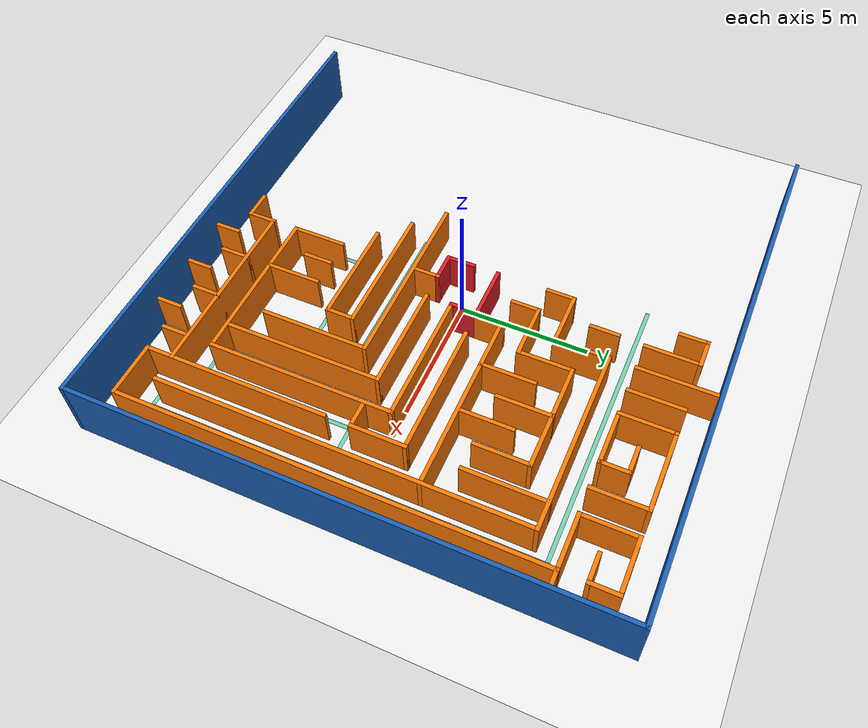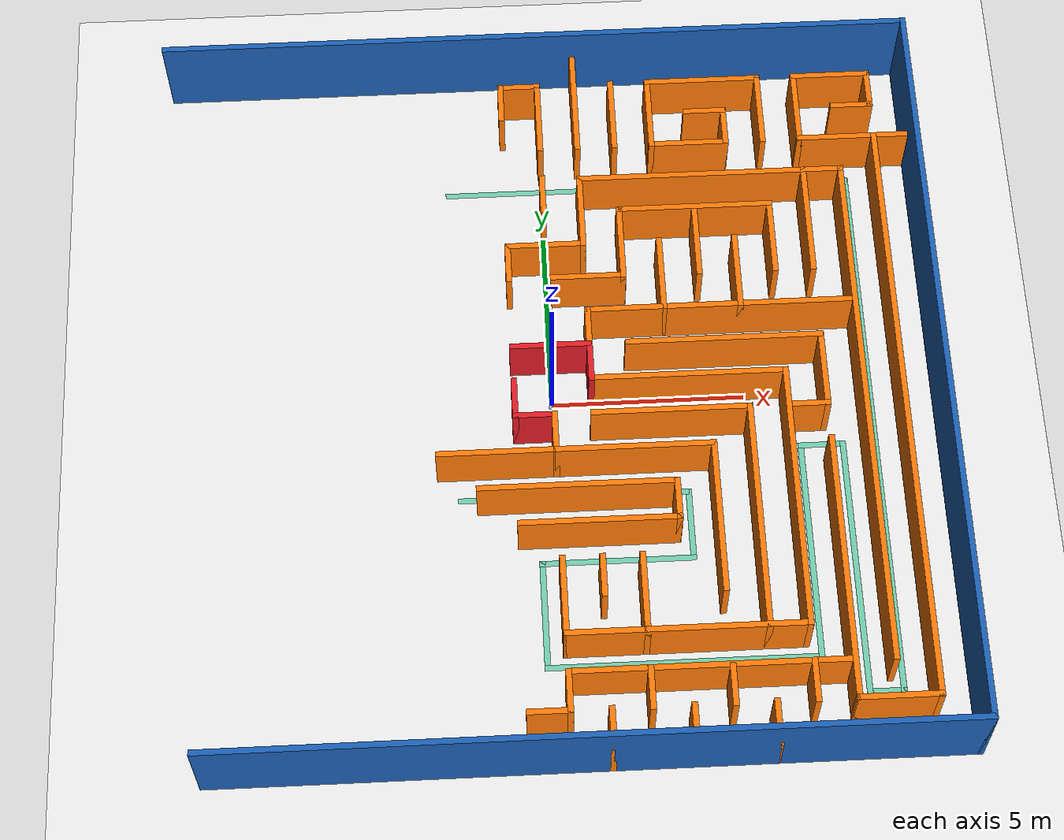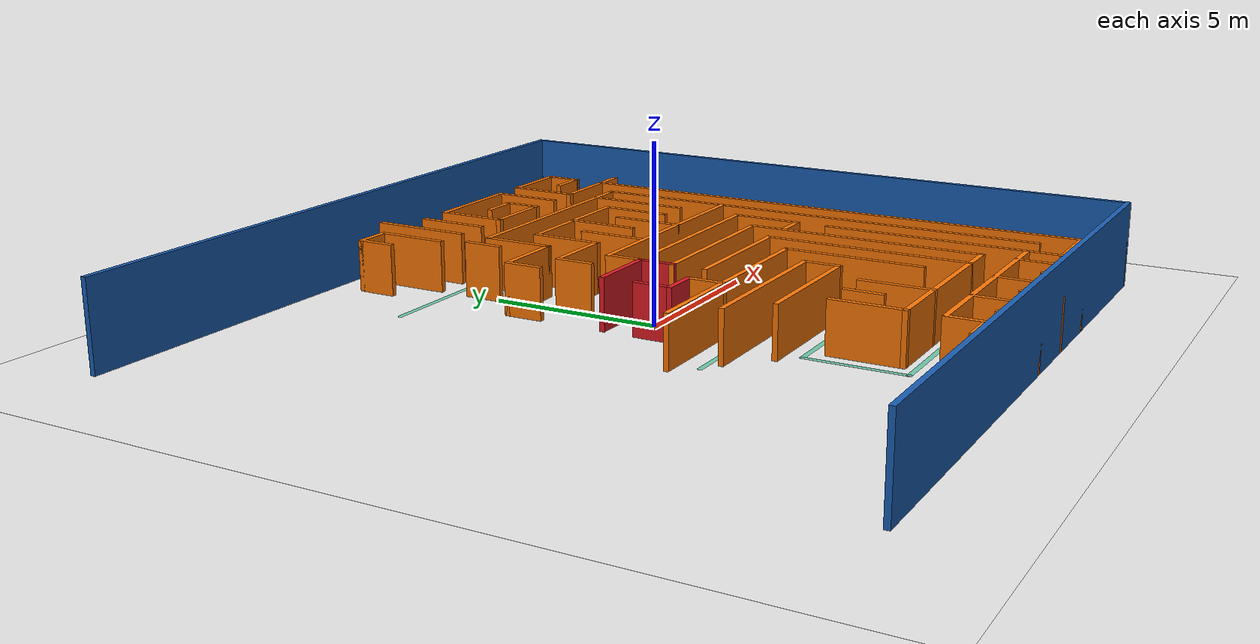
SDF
<sdf version="1.7">
 <world name="default">
  <model name="ground_plane">
   <static>1</static>
   <link name="link">
    <collision name="collision">
     <geometry><plane><normal>0 0 1</normal><size>100 100</size></plane></geometry>
     <surface><friction><ode><mu>100</mu><mu2>50</mu2></ode></friction></surface>
    </collision>
    <visual name="visual">
     <cast_shadows>0</cast_shadows>
     <geometry><plane><normal>0 0 1</normal><size>100 100</size></plane></geometry>
     <material>
      <script><uri>file://media/materials/scripts/gazebo.material</uri><name>Gazebo/White</name></script>
     </material>
    </visual>
   </link>
  </model>
  <model name="big_maze">
   <link name="Wall_100">
    <collision name="Wall_100_Collision">
     <geometry><box><size>1.15 0.15 1.6</size></box></geometry>
     <pose>0 0 0.8 0 -0 0</pose>
    </collision>
    <visual name="Wall_100_Visual">
     <pose>0 0 0.8 0 -0 0</pose>
     <geometry><box><size>1.15 0.15 1.6</size></box></geometry>
     <material>
      <script><uri>file://media/materials/scripts/gazebo.material</uri><name>Gazebo/Grey</name></script>
      <ambient>0.996078 0.47451 0.0196078 1</ambient>
     </material>
     <meta><layer>0</layer></meta>
    </visual>
    <pose>0 5.5 0 0 -0 1.5708</pose>
   </link>
   <link name="Wall_102">
    <collision name="Wall_102_Collision">
     <geometry><box><size>2.15 0.15 1.5</size></box></geometry>
     <pose>0 0 0.75 0 -0 0</pose>
    </collision>
    <visual name="Wall_102_Visual">
     <pose>0 0 0.75 0 -0 0</pose>
     <geometry><box><size>2.15 0.15 1.5</size></box></geometry>
     <material>
      <script><uri>file://media/materials/scripts/gazebo.material</uri><name>Gazebo/Grey</name></script>
      <ambient>0.996078 0.47451 0.0196078 1</ambient>
     </material>
     <meta><layer>0</layer></meta>
    </visual>
    <pose>0 8 0 0 -0 1.5708</pose>
   </link>
   <link name="Wall_104">
    <collision name="Wall_104_Collision">
     <geometry><box><size>1.15 0.15 1.5</size></box></geometry>
     <pose>0 0 0.75 0 -0 0</pose>
    </collision>
    <visual name="Wall_104_Visual">
     <pose>0 0 0.75 0 -0 0</pose>
     <geometry><box><size>1.15 0.15 1.5</size></box></geometry>
     <material>
      <script><uri>file://media/materials/scripts/gazebo.material</uri><name>Gazebo/Grey</name></script>
      <ambient>0.996078 0.47451 0.0196078 1</ambient>
     </material>
     <meta><layer>0</layer></meta>
    </visual>
    <pose>1 -9.5 0 0 -0 1.5708</pose>
   </link>
   <link name="Wall_106">
    <collision name="Wall_106_Collision">
     <geometry><box><size>3.15 0.15 1.5</size></box></geometry>
     <pose>0 0 0.75 0 -0 0</pose>
    </collision>
    <visual name="Wall_106_Visual">
     <pose>0 0 0.75 0 -0 0</pose>
     <geometry><box><size>3.15 0.15 1.5</size></box></geometry>
     <material>
      <script><uri>file://media/materials/scripts/gazebo.material</uri><name>Gazebo/Grey</name></script>
      <ambient>0.996078 0.47451 0.0196078 1</ambient>
     </material>
     <meta><layer>0</layer></meta>
    </visual>
    <pose>1 8.5 0 0 -0 1.5708</pose>
   </link>
   <link name="Wall_108">
    <collision name="Wall_108_Collision">
     <geometry><box><size>2.15 0.15 1.5</size></box></geometry>
     <pose>0 0 0.75 0 -0 0</pose>
    </collision>
    <visual name="Wall_108_Visual">
     <pose>0 0 0.75 0 -0 0</pose>
     <geometry><box><size>2.15 0.15 1.5</size></box></geometry>
     <material>
      <script><uri>file://media/materials/scripts/gazebo.material</uri><name>Gazebo/Grey</name></script>
      <ambient>0.996078 0.47451 0.0196078 1</ambient>
     </material>
     <meta><layer>0</layer></meta>
    </visual>
    <pose>1 5 0 0 -0 1.5708</pose>
   </link>
   <link name="Wall_110">
    <collision name="Wall_110_Collision">
     <geometry><box><size>1.15 0.15 1.5</size></box></geometry>
     <pose>0 0 0.75 0 -0 0</pose>
    </collision>
    <visual name="Wall_110_Visual">
     <pose>0 0 0.75 0 -0 0</pose>
     <geometry><box><size>1.15 0.15 1.5</size></box></geometry>
     <material>
      <script><uri>file://media/materials/scripts/gazebo.material</uri><name>Gazebo/Grey</name></script>
      <ambient>0.878431 0.105882 0.141176 1</ambient>
     </material>
     <meta><layer>0</layer></meta>
    </visual>
    <pose>1 0.5 0 0 -0 1.5708</pose>
   </link>
   <link name="Wall_112">
    <collision name="Wall_112_Collision">
     <geometry><box><size>1.15 0.15 1.5</size></box></geometry>
     <pose>0 0 0.75 0 -0 0</pose>
    </collision>
    <visual name="Wall_112_Visual">
     <pose>0 0 0.75 0 -0 0</pose>
     <geometry><box><size>1.15 0.15 1.5</size></box></geometry>
     <material>
      <script><uri>file://media/materials/scripts/gazebo.material</uri><name>Gazebo/Grey</name></script>
      <ambient>0.996078 0.47451 0.0196078 1</ambient>
     </material>
     <meta><layer>0</layer></meta>
    </visual>
    <pose>1 -5.5 0 0 -0 1.5708</pose>
   </link>
   <link name="Wall_114">
    <collision name="Wall_114_Collision">
     <geometry><box><size>1.15 0.15 1.5</size></box></geometry>
     <pose>0 0 0.75 0 -0 0</pose>
    </collision>
    <visual name="Wall_114_Visual">
     <pose>0 0 0.75 0 -0 0</pose>
     <geometry><box><size>1.15 0.15 1.5</size></box></geometry>
     <material>
      <script><uri>file://media/materials/scripts/gazebo.material</uri><name>Gazebo/Grey</name></script>
      <ambient>0.996078 0.47451 0.0196078 1</ambient>
     </material>
     <meta><layer>0</layer></meta>
    </visual>
    <pose>2 -8.5 0 0 -0 1.5708</pose>
   </link>
   <link name="Wall_116">
    <collision name="Wall_116_Collision">
     <geometry><box><size>2.15 0.15 1.5</size></box></geometry>
     <pose>0 0 0.75 0 -0 0</pose>
    </collision>
    <visual name="Wall_116_Visual">
     <pose>0 0 0.75 0 -0 0</pose>
     <geometry><box><size>2.15 0.15 1.5</size></box></geometry>
     <material>
      <script><uri>file://media/materials/scripts/gazebo.material</uri><name>Gazebo/Grey</name></script>
      <ambient>0.996078 0.47451 0.0196078 1</ambient>
     </material>
     <meta><layer>0</layer></meta>
    </visual>
    <pose>2 -6 0 0 -0 1.5708</pose>
   </link>
   <link name="Wall_118">
    <collision name="Wall_118_Collision">
     <geometry><box><size>2.15 0.15 1.5</size></box></geometry>
     <pose>0 0 0.75 0 -0 0</pose>
    </collision>
    <visual name="Wall_118_Visual">
     <pose>0 0 0.75 0 -0 0</pose>
     <geometry><box><size>2.15 0.15 1.5</size></box></geometry>
     <material>
      <script><uri>file://media/materials/scripts/gazebo.material</uri><name>Gazebo/Grey</name></script>
      <ambient>0.996078 0.47451 0.0196078 1</ambient>
     </material>
     <meta><layer>0</layer></meta>
    </visual>
    <pose>2 8 0 0 -0 1.5708</pose>
   </link>
   <link name="Wall_12">
    <collision name="Wall_12_Collision">
     <geometry><box><size>20.15 0.15 2.5</size></box></geometry>
     <pose>0 0 1.25 0 -0 0</pose>
    </collision>
    <visual name="Wall_12_Visual">
     <pose>0 0 1.25 0 -0 0</pose>
     <geometry><box><size>20.15 0.15 2.5</size></box></geometry>
     <material>
      <script><uri>file://media/materials/scripts/gazebo.material</uri><name>Gazebo/Grey</name></script>
      <ambient>0.101961 0.372549 0.705882 1</ambient>
     </material>
     <meta><layer>0</layer></meta>
    </visual>
    <pose>0 10 0 0 -0 0</pose>
   </link>
   <link name="Wall_120">
    <collision name="Wall_120_Collision">
     <geometry><box><size>2.15 0.15 1.5</size></box></geometry>
     <pose>0 0 0.75 0 -0 0</pose>
    </collision>
    <visual name="Wall_120_Visual">
     <pose>0 0 0.75 0 -0 0</pose>
     <geometry><box><size>2.15 0.15 1.5</size></box></geometry>
     <material>
      <script><uri>file://media/materials/scripts/gazebo.material</uri><name>Gazebo/Grey</name></script>
      <ambient>0.996078 0.47451 0.0196078 1</ambient>
     </material>
     <meta><layer>0</layer></meta>
    </visual>
    <pose>2 4 0 0 -0 1.5708</pose>
   </link>
   <link name="Wall_122">
    <collision name="Wall_122_Collision">
     <geometry><box><size>1.15 0.15 1.5</size></box></geometry>
     <pose>0 0 0.75 0 -0 0</pose>
    </collision>
    <visual name="Wall_122_Visual">
     <pose>0 0 0.75 0 -0 0</pose>
     <geometry><box><size>1.15 0.15 1.5</size></box></geometry>
     <material>
      <script><uri>file://media/materials/scripts/gazebo.material</uri><name>Gazebo/Grey</name></script>
      <ambient>0.996078 0.47451 0.0196078 1</ambient>
     </material>
     <meta><layer>0</layer></meta>
    </visual>
    <pose>3 -9.5 0 0 -0 1.5708</pose>
   </link>
   <link name="Wall_124">
    <collision name="Wall_124_Collision">
     <geometry><box><size>2.15 0.15 1.5</size></box></geometry>
     <pose>0 0 0.75 0 -0 0</pose>
    </collision>
    <visual name="Wall_124_Visual">
     <pose>0 0 0.75 0 -0 0</pose>
     <geometry><box><size>2.15 0.15 1.5</size></box></geometry>
     <material>
      <script><uri>file://media/materials/scripts/gazebo.material</uri><name>Gazebo/Grey</name></script>
      <ambient>0.996078 0.47451 0.0196078 1</ambient>
     </material>
     <meta><layer>0</layer></meta>
    </visual>
    <pose>3 8 0 0 -0 1.5708</pose>
   </link>
   <link name="Wall_126">
    <collision name="Wall_126_Collision">
     <geometry><box><size>2.15 0.15 1.5</size></box></geometry>
     <pose>0 0 0.75 0 -0 0</pose>
    </collision>
    <visual name="Wall_126_Visual">
     <pose>0 0 0.75 0 -0 0</pose>
     <geometry><box><size>2.15 0.15 1.5</size></box></geometry>
     <material>
      <script><uri>file://media/materials/scripts/gazebo.material</uri><name>Gazebo/Grey</name></script>
      <ambient>0.996078 0.47451 0.0196078 1</ambient>
     </material>
     <meta><layer>0</layer></meta>
    </visual>
    <pose>3 3 0 0 -0 1.5708</pose>
   </link>
   <link name="Wall_128">
    <collision name="Wall_128_Collision">
     <geometry><box><size>1.15 0.15 1.5</size></box></geometry>
     <pose>0 0 0.75 0 -0 0</pose>
    </collision>
    <visual name="Wall_128_Visual">
     <pose>0 0 0.75 0 -0 0</pose>
     <geometry><box><size>1.15 0.15 1.5</size></box></geometry>
     <material>
      <script><uri>file://media/materials/scripts/gazebo.material</uri><name>Gazebo/Grey</name></script>
      <ambient>0.996078 0.47451 0.0196078 1</ambient>
     </material>
     <meta><layer>0</layer></meta>
    </visual>
    <pose>3 -3.5 0 0 -0 1.5708</pose>
   </link>
   <link name="Wall_130">
    <collision name="Wall_130_Collision">
     <geometry><box><size>2.15 0.15 1.5</size></box></geometry>
     <pose>0 0 0.75 0 -0 0</pose>
    </collision>
    <visual name="Wall_130_Visual">
     <pose>0 0 0.75 0 -0 0</pose>
     <geometry><box><size>2.15 0.15 1.5</size></box></geometry>
     <material>
      <script><uri>file://media/materials/scripts/gazebo.material</uri><name>Gazebo/Grey</name></script>
      <ambient>0.996078 0.47451 0.0196078 1</ambient>
     </material>
     <meta><layer>0</layer></meta>
    </visual>
    <pose>4 4 0 0 -0 1.5708</pose>
   </link>
   <link name="Wall_132">
    <collision name="Wall_132_Collision">
     <geometry><box><size>1.15 0.15 1.5</size></box></geometry>
     <pose>0 0 0.75 0 -0 0</pose>
    </collision>
    <visual name="Wall_132_Visual">
     <pose>0 0 0.75 0 -0 0</pose>
     <geometry><box><size>1.15 0.15 1.5</size></box></geometry>
     <material>
      <script><uri>file://media/materials/scripts/gazebo.material</uri><name>Gazebo/Grey</name></script>
      <ambient>0.996078 0.47451 0.0196078 1</ambient>
     </material>
     <meta><layer>0</layer></meta>
    </visual>
    <pose>4 -8.5 0 0 -0 1.5708</pose>
   </link>
   <link name="Wall_134">
    <collision name="Wall_134_Collision">
     <geometry><box><size>4.15 0.15 1.5</size></box></geometry>
     <pose>0 0 0.75 0 -0 0</pose>
    </collision>
    <visual name="Wall_134_Visual">
     <pose>0 0 0.75 0 -0 0</pose>
     <geometry><box><size>4.15 0.15 1.5</size></box></geometry>
     <material>
      <script><uri>file://media/materials/scripts/gazebo.material</uri><name>Gazebo/Grey</name></script>
      <ambient>0.996078 0.47451 0.0196078 1</ambient>
     </material>
     <meta><layer>0</layer></meta>
    </visual>
    <pose>4 -4 0 0 -0 1.5708</pose>
   </link>
   <link name="Wall_136">
    <collision name="Wall_136_Collision">
     <geometry><box><size>1.15 0.15 1.5</size></box></geometry>
     <pose>0 0 0.75 0 -0 0</pose>
    </collision>
    <visual name="Wall_136_Visual">
     <pose>0 0 0.75 0 -0 0</pose>
     <geometry><box><size>1.15 0.15 1.5</size></box></geometry>
     <material>
      <script><uri>file://media/materials/scripts/gazebo.material</uri><name>Gazebo/Grey</name></script>
      <ambient>0.996078 0.47451 0.0196078 1</ambient>
     </material>
     <meta><layer>0</layer></meta>
    </visual>
    <pose>5 7.5 0 0 -0 -1.5708</pose>
   </link>
   <link name="Wall_138">
    <collision name="Wall_138_Collision">
     <geometry><box><size>2.15 0.15 1.5</size></box></geometry>
     <pose>0 0 0.75 0 -0 0</pose>
    </collision>
    <visual name="Wall_138_Visual">
     <pose>0 0 0.75 0 -0 0</pose>
     <geometry><box><size>2.15 0.15 1.5</size></box></geometry>
     <material>
      <script><uri>file://media/materials/scripts/gazebo.material</uri><name>Gazebo/Grey</name></script>
      <ambient>0.996078 0.47451 0.0196078 1</ambient>
     </material>
     <meta><layer>0</layer></meta>
    </visual>
    <pose>5 3 0 0 -0 1.5708</pose>
   </link>
   <link name="Wall_14">
    <collision name="Wall_14_Collision">
     <geometry><box><size>20.15 0.15 2.5</size></box></geometry>
     <pose>0 0 1.25 0 -0 0</pose>
    </collision>
    <visual name="Wall_14_Visual">
     <pose>0 0 1.25 0 -0 0</pose>
     <geometry><box><size>20.15 0.15 2.5</size></box></geometry>
     <material>
      <script><uri>file://media/materials/scripts/gazebo.material</uri><name>Gazebo/Grey</name></script>
      <ambient>0.101961 0.372549 0.705882 1</ambient>
     </material>
     <meta><layer>0</layer></meta>
    </visual>
    <pose>10 0 0 0 -0 -1.5708</pose>
   </link>
   <link name="Wall_140">
    <collision name="Wall_140_Collision">
     <geometry><box><size>6.15 0.15 1.5</size></box></geometry>
     <pose>0 0 0.75 0 -0 0</pose>
    </collision>
    <visual name="Wall_140_Visual">
     <pose>0 0 0.75 0 -0 0</pose>
     <geometry><box><size>6.15 0.15 1.5</size></box></geometry>
     <material>
      <script><uri>file://media/materials/scripts/gazebo.material</uri><name>Gazebo/Grey</name></script>
      <ambient>0.996078 0.47451 0.0196078 1</ambient>
     </material>
     <meta><layer>0</layer></meta>
    </visual>
    <pose>5 -4 0 0 -0 1.5708</pose>
   </link>
   <link name="Wall_142">
    <collision name="Wall_142_Collision">
     <geometry><box><size>1.15 0.15 1.5</size></box></geometry>
     <pose>0 0 0.75 0 -0 0</pose>
    </collision>
    <visual name="Wall_142_Visual">
     <pose>0 0 0.75 0 -0 0</pose>
     <geometry><box><size>1.15 0.15 1.5</size></box></geometry>
     <material>
      <script><uri>file://media/materials/scripts/gazebo.material</uri><name>Gazebo/Grey</name></script>
      <ambient>0.996078 0.47451 0.0196078 1</ambient>
     </material>
     <meta><layer>0</layer></meta>
    </visual>
    <pose>5 -9.5 0 0 -0 1.5708</pose>
   </link>
   <link name="Wall_144">
    <collision name="Wall_144_Collision">
     <geometry><box><size>2.15 0.15 1.5</size></box></geometry>
     <pose>0 0 0.75 0 -0 0</pose>
    </collision>
    <visual name="Wall_144_Visual">
     <pose>0 0 0.75 0 -0 0</pose>
     <geometry><box><size>2.15 0.15 1.5</size></box></geometry>
     <material>
      <script><uri>file://media/materials/scripts/gazebo.material</uri><name>Gazebo/Grey</name></script>
      <ambient>0.996078 0.47451 0.0196078 1</ambient>
     </material>
     <meta><layer>0</layer></meta>
    </visual>
    <pose>6 8 0 0 -0 1.5708</pose>
   </link>
   <link name="Wall_146">
    <collision name="Wall_146_Collision">
     <geometry><box><size>1.15 0.15 1.5</size></box></geometry>
     <pose>0 0 0.75 0 -0 0</pose>
    </collision>
    <visual name="Wall_146_Visual">
     <pose>0 0 0.75 0 -0 0</pose>
     <geometry><box><size>1.15 0.15 1.5</size></box></geometry>
     <material>
      <script><uri>file://media/materials/scripts/gazebo.material</uri><name>Gazebo/Grey</name></script>
      <ambient>0.996078 0.47451 0.0196078 1</ambient>
     </material>
     <meta><layer>0</layer></meta>
    </visual>
    <pose>6 -8.5 0 0 -0 1.5708</pose>
   </link>
   <link name="Wall_148">
    <collision name="Wall_148_Collision">
     <geometry><box><size>2.15 0.15 1.5</size></box></geometry>
     <pose>0 0 0.75 0 -0 0</pose>
    </collision>
    <visual name="Wall_148_Visual">
     <pose>0 0 0.75 0 -0 0</pose>
     <geometry><box><size>2.15 0.15 1.5</size></box></geometry>
     <material>
      <script><uri>file://media/materials/scripts/gazebo.material</uri><name>Gazebo/Grey</name></script>
      <ambient>0.996078 0.47451 0.0196078 1</ambient>
     </material>
     <meta><layer>0</layer></meta>
    </visual>
    <pose>6 4 0 0 -0 1.5708</pose>
   </link>
   <link name="Wall_150">
    <collision name="Wall_150_Collision">
     <geometry><box><size>7.15 0.15 1.5</size></box></geometry>
     <pose>0 0 0.75 0 -0 0</pose>
    </collision>
    <visual name="Wall_150_Visual">
     <pose>0 0 0.75 0 -0 0</pose>
     <geometry><box><size>7.15 0.15 1.5</size></box></geometry>
     <material>
      <script><uri>file://media/materials/scripts/gazebo.material</uri><name>Gazebo/Grey</name></script>
      <ambient>0.996078 0.47451 0.0196078 1</ambient>
     </material>
     <meta><layer>0</layer></meta>
    </visual>
    <pose>6 -3.5 0 0 -0 1.5708</pose>
   </link>
   <link name="Wall_152">
    <collision name="Wall_152_Collision">
     <geometry><box><size>7.15 0.15 1.5</size></box></geometry>
     <pose>0 0 0.75 0 -0 0</pose>
    </collision>
    <visual name="Wall_152_Visual">
     <pose>0 0 0.75 0 -0 0</pose>
     <geometry><box><size>7.15 0.15 1.5</size></box></geometry>
     <material>
      <script><uri>file://media/materials/scripts/gazebo.material</uri><name>Gazebo/Grey</name></script>
      <ambient>0.996078 0.47451 0.0196078 1</ambient>
     </material>
     <meta><layer>0</layer></meta>
    </visual>
    <pose>7 -5.5 0 0 -0 1.5708</pose>
   </link>
   <link name="Wall_154">
    <collision name="Wall_154_Collision">
     <geometry><box><size>2.15 0.15 1.5</size></box></geometry>
     <pose>0 0 0.75 0 -0 0</pose>
    </collision>
    <visual name="Wall_154_Visual">
     <pose>0 0 0.75 0 -0 0</pose>
     <geometry><box><size>2.15 0.15 1.5</size></box></geometry>
     <material>
      <script><uri>file://media/materials/scripts/gazebo.material</uri><name>Gazebo/Grey</name></script>
      <ambient>0.996078 0.47451 0.0196078 1</ambient>
     </material>
     <meta><layer>0</layer></meta>
    </visual>
    <pose>7 8 0 0 -0 1.5708</pose>
   </link>
   <link name="Wall_156">
    <collision name="Wall_156_Collision">
     <geometry><box><size>3.15 0.15 1.5</size></box></geometry>
     <pose>0 0 0.75 0 -0 0</pose>
    </collision>
    <visual name="Wall_156_Visual">
     <pose>0 0 0.75 0 -0 0</pose>
     <geometry><box><size>3.15 0.15 1.5</size></box></geometry>
     <material>
      <script><uri>file://media/materials/scripts/gazebo.material</uri><name>Gazebo/Grey</name></script>
      <ambient>0.996078 0.47451 0.0196078 1</ambient>
     </material>
     <meta><layer>0</layer></meta>
    </visual>
    <pose>7 4.5 0 0 -0 1.5708</pose>
   </link>
   <link name="Wall_158">
    <collision name="Wall_158_Collision">
     <geometry><box><size>2.15 0.15 1.5</size></box></geometry>
     <pose>0 0 0.75 0 -0 0</pose>
    </collision>
    <visual name="Wall_158_Visual">
     <pose>0 0 0.75 0 -0 0</pose>
     <geometry><box><size>2.15 0.15 1.5</size></box></geometry>
     <material>
      <script><uri>file://media/materials/scripts/gazebo.material</uri><name>Gazebo/Grey</name></script>
      <ambient>0.996078 0.47451 0.0196078 1</ambient>
     </material>
     <meta><layer>0</layer></meta>
    </visual>
    <pose>7 0 0 0 -0 1.5708</pose>
   </link>
   <link name="Wall_160">
    <collision name="Wall_160_Collision">
     <geometry><box><size>14.15 0.15 1.5</size></box></geometry>
     <pose>0 0 0.75 0 -0 0</pose>
    </collision>
    <visual name="Wall_160_Visual">
     <pose>0 0 0.75 0 -0 0</pose>
     <geometry><box><size>14.15 0.15 1.5</size></box></geometry>
     <material>
      <script><uri>file://media/materials/scripts/gazebo.material</uri><name>Gazebo/Grey</name></script>
      <ambient>0.996078 0.47451 0.0196078 1</ambient>
     </material>
     <meta><layer>0</layer></meta>
    </visual>
    <pose>8 -1 0 0 -0 1.5708</pose>
   </link>
   <link name="Wall_162">
    <collision name="Wall_162_Collision">
     <geometry><box><size>16.15 0.15 1.5</size></box></geometry>
     <pose>0 0 0.75 0 -0 0</pose>
    </collision>
    <visual name="Wall_162_Visual">
     <pose>0 0 0.75 0 -0 0</pose>
     <geometry><box><size>16.15 0.15 1.5</size></box></geometry>
     <material>
      <script><uri>file://media/materials/scripts/gazebo.material</uri><name>Gazebo/Grey</name></script>
      <ambient>0.996078 0.47451 0.0196078 1</ambient>
     </material>
     <meta><layer>0</layer></meta>
    </visual>
    <pose>9 -1 0 0 -0 1.5708</pose>
   </link>
   <link name="Wall_164">
    <collision name="Wall_164_Collision">
     <geometry><box><size>1.15 0.15 1.5</size></box></geometry>
     <pose>0 0 0.75 0 -0 0</pose>
    </collision>
    <visual name="Wall_164_Visual">
     <pose>0 0 0.75 0 -0 0</pose>
     <geometry><box><size>1.15 0.15 1.5</size></box></geometry>
     <material>
      <script><uri>file://media/materials/scripts/gazebo.material</uri><name>Gazebo/Grey</name></script>
      <ambient>0.996078 0.47451 0.0196078 1</ambient>
     </material>
     <meta><layer>0</layer></meta>
    </visual>
    <pose>9 8.5 0 0 -0 -1.5708</pose>
   </link>
   <link name="Wall_170">
    <collision name="Wall_170_Collision">
     <geometry><box><size>2.15 0.15 1.5</size></box></geometry>
     <pose>0 0 0.75 0 -0 0</pose>
    </collision>
    <visual name="Wall_170_Visual">
     <pose>0 0 0.75 0 -0 0</pose>
     <geometry><box><size>2.15 0.15 1.5</size></box></geometry>
     <material>
      <script><uri>file://media/materials/scripts/gazebo.material</uri><name>Gazebo/Grey</name></script>
      <ambient>0.996078 0.47451 0.0196078 1</ambient>
     </material>
     <meta><layer>0</layer></meta>
    </visual>
    <pose>8 9 0 0 -0 3.14159</pose>
   </link>
   <link name="Wall_172">
    <collision name="Wall_172_Collision">
     <geometry><box><size>3.15 0.15 1.5</size></box></geometry>
     <pose>0 0 0.75 0 -0 0</pose>
    </collision>
    <visual name="Wall_172_Visual">
     <pose>0 0 0.75 0 -0 0</pose>
     <geometry><box><size>3.15 0.15 1.5</size></box></geometry>
     <material>
      <script><uri>file://media/materials/scripts/gazebo.material</uri><name>Gazebo/Grey</name></script>
      <ambient>0.996078 0.47451 0.0196078 1</ambient>
     </material>
     <meta><layer>0</layer></meta>
    </visual>
    <pose>4.5 9 0 0 -0 0</pose>
   </link>
   <link name="Wall_174">
    <collision name="Wall_174_Collision">
     <geometry><box><size>1.15 0.15 1.5</size></box></geometry>
     <pose>0 0 0.75 0 -0 0</pose>
    </collision>
    <visual name="Wall_174_Visual">
     <pose>0 0 0.75 0 -0 0</pose>
     <geometry><box><size>1.15 0.15 1.5</size></box></geometry>
     <material>
      <script><uri>file://media/materials/scripts/gazebo.material</uri><name>Gazebo/Grey</name></script>
      <ambient>0.996078 0.47451 0.0196078 1</ambient>
     </material>
     <meta><layer>0</layer></meta>
    </visual>
    <pose>-0.5 9 0 0 -0 0</pose>
   </link>
   <link name="Wall_178">
    <collision name="Wall_178_Collision">
     <geometry><box><size>1.15 0.15 1.5</size></box></geometry>
     <pose>0 0 0.75 0 -0 0</pose>
    </collision>
    <visual name="Wall_178_Visual">
     <pose>0 0 0.75 0 -0 0</pose>
     <geometry><box><size>1.15 0.15 1.5</size></box></geometry>
     <material>
      <script><uri>file://media/materials/scripts/gazebo.material</uri><name>Gazebo/Grey</name></script>
      <ambient>0.996078 0.47451 0.0196078 1</ambient>
     </material>
     <meta><layer>0</layer></meta>
    </visual>
    <pose>8.5 8 0 0 -0 3.14159</pose>
   </link>
   <link name="Wall_180">
    <collision name="Wall_180_Collision">
     <geometry><box><size>1.15 0.15 1.5</size></box></geometry>
     <pose>0 0 0.75 0 -0 0</pose>
    </collision>
    <visual name="Wall_180_Visual">
     <pose>0 0 0.75 0 -0 0</pose>
     <geometry><box><size>1.15 0.15 1.5</size></box></geometry>
     <material>
      <script><uri>file://media/materials/scripts/gazebo.material</uri><name>Gazebo/Grey</name></script>
      <ambient>0.996078 0.47451 0.0196078 1</ambient>
     </material>
     <meta><layer>0</layer></meta>
    </visual>
    <pose>4.5 8 0 0 -0 0</pose>
   </link>
   <link name="Wall_184">
    <collision name="Wall_184_Collision">
     <geometry><box><size>2.15 0.15 1.5</size></box></geometry>
     <pose>0 0 0.75 0 -0 0</pose>
    </collision>
    <visual name="Wall_184_Visual">
     <pose>0 0 0.75 0 -0 0</pose>
     <geometry><box><size>2.15 0.15 1.5</size></box></geometry>
     <material>
      <script><uri>file://media/materials/scripts/gazebo.material</uri><name>Gazebo/Grey</name></script>
      <ambient>0.996078 0.47451 0.0196078 1</ambient>
     </material>
     <meta><layer>0</layer></meta>
    </visual>
    <pose>4 7 0 0 -0 0</pose>
   </link>
   <link name="Wall_188">
    <collision name="Wall_188_Collision">
     <geometry><box><size>3.15 0.15 1.5</size></box></geometry>
     <pose>0 0 0.75 0 -0 0</pose>
    </collision>
    <visual name="Wall_188_Visual">
     <pose>0 0 0.75 0 -0 0</pose>
     <geometry><box><size>3.15 0.15 1.5</size></box></geometry>
     <material>
      <script><uri>file://media/materials/scripts/gazebo.material</uri><name>Gazebo/Grey</name></script>
      <ambient>0.996078 0.47451 0.0196078 1</ambient>
     </material>
     <meta><layer>0</layer></meta>
    </visual>
    <pose>8.5 7 0 0 -0 0</pose>
   </link>
   <link name="Wall_194">
    <collision name="Wall_194_Collision">
     <geometry><box><size>7.15 0.15 1.5</size></box></geometry>
     <pose>0 0 0.75 0 -0 0</pose>
    </collision>
    <visual name="Wall_194_Visual">
     <pose>0 0 0.75 0 -0 0</pose>
     <geometry><box><size>7.15 0.15 1.5</size></box></geometry>
     <material>
      <script><uri>file://media/materials/scripts/gazebo.material</uri><name>Gazebo/Grey</name></script>
      <ambient>0.996078 0.47451 0.0196078 1</ambient>
     </material>
     <meta><layer>0</layer></meta>
    </visual>
    <pose>4.5 6 0 0 -0 0</pose>
   </link>
   <link name="Wall_202">
    <collision name="Wall_202_Collision">
     <geometry><box><size>4.15 0.15 1.5</size></box></geometry>
     <pose>0 0 0.75 0 -0 0</pose>
    </collision>
    <visual name="Wall_202_Visual">
     <pose>0 0 0.75 0 -0 0</pose>
     <geometry><box><size>4.15 0.15 1.5</size></box></geometry>
     <material>
      <script><uri>file://media/materials/scripts/gazebo.material</uri><name>Gazebo/Grey</name></script>
      <ambient>0.996078 0.47451 0.0196078 1</ambient>
     </material>
     <meta><layer>0</layer></meta>
    </visual>
    <pose>4 5 0 0 -0 0</pose>
   </link>
   <link name="Wall_208">
    <collision name="Wall_208_Collision">
     <geometry><box><size>2.15 0.15 1.5</size></box></geometry>
     <pose>0 0 0.75 0 -0 0</pose>
    </collision>
    <visual name="Wall_208_Visual">
     <pose>0 0 0.75 0 -0 0</pose>
     <geometry><box><size>2.15 0.15 1.5</size></box></geometry>
     <material>
      <script><uri>file://media/materials/scripts/gazebo.material</uri><name>Gazebo/Grey</name></script>
      <ambient>0.996078 0.47451 0.0196078 1</ambient>
     </material>
     <meta><layer>0</layer></meta>
    </visual>
    <pose>0 4 0 0 -0 0</pose>
   </link>
   <link name="Wall_214">
    <collision name="Wall_214_Collision">
     <geometry><box><size>2.15 0.15 1.5</size></box></geometry>
     <pose>0 0 0.75 0 -0 0</pose>
    </collision>
    <visual name="Wall_214_Visual">
     <pose>0 0 0.75 0 -0 0</pose>
     <geometry><box><size>2.15 0.15 1.5</size></box></geometry>
     <material>
      <script><uri>file://media/materials/scripts/gazebo.material</uri><name>Gazebo/Grey</name></script>
      <ambient>0.996078 0.47451 0.0196078 1</ambient>
     </material>
     <meta><layer>0</layer></meta>
    </visual>
    <pose>1 3 0 0 -0 0</pose>
   </link>
   <link name="Wall_224">
    <collision name="Wall_224_Collision">
     <geometry><box><size>7.15 0.15 1.5</size></box></geometry>
     <pose>0 0 0.75 0 -0 0</pose>
    </collision>
    <visual name="Wall_224_Visual">
     <pose>0 0 0.75 0 -0 0</pose>
     <geometry><box><size>7.15 0.15 1.5</size></box></geometry>
     <material>
      <script><uri>file://media/materials/scripts/gazebo.material</uri><name>Gazebo/Grey</name></script>
      <ambient>0.996078 0.47451 0.0196078 1</ambient>
     </material>
     <meta><layer>0</layer></meta>
    </visual>
    <pose>4.5 2 0 0 -0 0</pose>
   </link>
   <link name="Wall_230">
    <collision name="Wall_230_Collision">
     <geometry><box><size>5.15 0.15 1.5</size></box></geometry>
     <pose>0 0 0.75 0 -0 0</pose>
    </collision>
    <visual name="Wall_230_Visual">
     <pose>0 0 0.75 0 -0 0</pose>
     <geometry><box><size>5.15 0.15 1.5</size></box></geometry>
     <material>
      <script><uri>file://media/materials/scripts/gazebo.material</uri><name>Gazebo/Grey</name></script>
      <ambient>0.996078 0.47451 0.0196078 1</ambient>
     </material>
     <meta><layer>0</layer></meta>
    </visual>
    <pose>4.5 1 0 0 -0 0</pose>
   </link>
   <link name="Wall_232">
    <collision name="Wall_232_Collision">
     <geometry><box><size>2.15 0.15 1.5</size></box></geometry>
     <pose>0 0 0.75 0 -0 0</pose>
    </collision>
    <visual name="Wall_232_Visual">
     <pose>0 0 0.75 0 -0 0</pose>
     <geometry><box><size>2.15 0.15 1.5</size></box></geometry>
     <material>
      <script><uri>file://media/materials/scripts/gazebo.material</uri><name>Gazebo/Grey</name></script>
      <ambient>0.878431 0.105882 0.141176 1</ambient>
     </material>
     <meta><layer>0</layer></meta>
    </visual>
    <pose>0 1 0 0 -0 0</pose>
   </link>
   <link name="Wall_240">
    <collision name="Wall_240_Collision">
     <geometry><box><size>5.15 0.15 1.5</size></box></geometry>
     <pose>0 0 0.75 0 -0 0</pose>
    </collision>
    <visual name="Wall_240_Visual">
     <pose>0 0 0.75 0 -0 0</pose>
     <geometry><box><size>5.15 0.15 1.5</size></box></geometry>
     <material>
      <script><uri>file://media/materials/scripts/gazebo.material</uri><name>Gazebo/Grey</name></script>
      <ambient>0.996078 0.47451 0.0196078 1</ambient>
     </material>
     <meta><layer>0</layer></meta>
    </visual>
    <pose>3.5 0 0 0 -0 0</pose>
   </link>
   <link name="Wall_246">
    <collision name="Wall_246_Collision">
     <geometry><box><size>1.15 0.15 1.5</size></box></geometry>
     <pose>0 0 0.75 0 -0 0</pose>
    </collision>
    <visual name="Wall_246_Visual">
     <pose>0 0 0.75 0 -0 0</pose>
     <geometry><box><size>1.15 0.15 1.5</size></box></geometry>
     <material>
      <script><uri>file://media/materials/scripts/gazebo.material</uri><name>Gazebo/Grey</name></script>
      <ambient>0.996078 0.47451 0.0196078 1</ambient>
     </material>
     <meta><layer>0</layer></meta>
    </visual>
    <pose>6.5 -1 0 0 -0 0</pose>
   </link>
   <link name="Wall_248">
    <collision name="Wall_248_Collision">
     <geometry><box><size>4.15 0.15 1.5</size></box></geometry>
     <pose>0 0 0.75 0 -0 0</pose>
    </collision>
    <visual name="Wall_248_Visual">
     <pose>0 0 0.75 0 -0 0</pose>
     <geometry><box><size>4.15 0.15 1.5</size></box></geometry>
     <material>
      <script><uri>file://media/materials/scripts/gazebo.material</uri><name>Gazebo/Grey</name></script>
      <ambient>0.996078 0.47451 0.0196078 1</ambient>
     </material>
     <meta><layer>0</layer></meta>
    </visual>
    <pose>3 -1 0 0 -0 0</pose>
   </link>
   <link name="Wall_250">
    <collision name="Wall_250_Collision">
     <geometry><box><size>1.15 0.15 1.5</size></box></geometry>
     <pose>0 0 0.75 0 -0 0</pose>
    </collision>
    <visual name="Wall_250_Visual">
     <pose>0 0 0.75 0 -0 0</pose>
     <geometry><box><size>1.15 0.15 1.5</size></box></geometry>
     <material>
      <script><uri>file://media/materials/scripts/gazebo.material</uri><name>Gazebo/Grey</name></script>
      <ambient>0.878431 0.105882 0.141176 1</ambient>
     </material>
     <meta><layer>0</layer></meta>
    </visual>
    <pose>-0.5 -1 0 0 -0 0</pose>
   </link>
   <link name="Wall_252">
    <collision name="Wall_252_Collision">
     <geometry><box><size>7.15 0.15 1.5</size></box></geometry>
     <pose>0 0 0.75 0 -0 0</pose>
    </collision>
    <visual name="Wall_252_Visual">
     <pose>0 0 0.75 0 -0 0</pose>
     <geometry><box><size>7.15 0.15 1.5</size></box></geometry>
     <material>
      <script><uri>file://media/materials/scripts/gazebo.material</uri><name>Gazebo/Grey</name></script>
      <ambient>0.996078 0.47451 0.0196078 1</ambient>
     </material>
     <meta><layer>0</layer></meta>
    </visual>
    <pose>0.5 -2 0 0 -0 0</pose>
   </link>
   <link name="Wall_254">
    <collision name="Wall_254_Collision">
     <geometry><box><size>5.15 0.15 1.5</size></box></geometry>
     <pose>0 0 0.75 0 -0 0</pose>
    </collision>
    <visual name="Wall_254_Visual">
     <pose>0 0 0.75 0 -0 0</pose>
     <geometry><box><size>5.15 0.15 1.5</size></box></geometry>
     <material>
      <script><uri>file://media/materials/scripts/gazebo.material</uri><name>Gazebo/Grey</name></script>
      <ambient>0.996078 0.47451 0.0196078 1</ambient>
     </material>
     <meta><layer>0</layer></meta>
    </visual>
    <pose>0.5 -3 0 0 -0 0</pose>
   </link>
   <link name="Wall_258">
    <collision name="Wall_258_Collision">
     <geometry><box><size>4.15 0.15 1.5</size></box></geometry>
     <pose>0 0 0.75 0 -0 0</pose>
    </collision>
    <visual name="Wall_258_Visual">
     <pose>0 0 0.75 0 -0 0</pose>
     <geometry><box><size>4.15 0.15 1.5</size></box></geometry>
     <material>
      <script><uri>file://media/materials/scripts/gazebo.material</uri><name>Gazebo/Grey</name></script>
      <ambient>0.996078 0.47451 0.0196078 1</ambient>
     </material>
     <meta><layer>0</layer></meta>
    </visual>
    <pose>1 -4 0 0 -0 0</pose>
   </link>
   <link name="Wall_262">
    <collision name="Wall_262_Collision">
     <geometry><box><size>6.15 0.15 1.5</size></box></geometry>
     <pose>0 0 0.75 0 -0 0</pose>
    </collision>
    <visual name="Wall_262_Visual">
     <pose>0 0 0.75 0 -0 0</pose>
     <geometry><box><size>6.15 0.15 1.5</size></box></geometry>
     <material>
      <script><uri>file://media/materials/scripts/gazebo.material</uri><name>Gazebo/Grey</name></script>
      <ambient>0.996078 0.47451 0.0196078 1</ambient>
     </material>
     <meta><layer>0</layer></meta>
    </visual>
    <pose>3 -7 0 0 -0 0</pose>
   </link>
   <link name="Wall_269">
    <collision name="Wall_269_Collision">
     <geometry><box><size>7.15 0.15 1.5</size></box></geometry>
     <pose>0 0 0.75 0 -0 0</pose>
    </collision>
    <visual name="Wall_269_Visual">
     <pose>0 0 0.75 0 -0 0</pose>
     <geometry><box><size>7.15 0.15 1.5</size></box></geometry>
     <material>
      <script><uri>file://media/materials/scripts/gazebo.material</uri><name>Gazebo/Grey</name></script>
      <ambient>0.996078 0.47451 0.0196078 1</ambient>
     </material>
     <meta><layer>0</layer></meta>
    </visual>
    <pose>3.5 -8 0 0 -0 0</pose>
   </link>
   <link name="Wall_273">
    <collision name="Wall_273_Collision">
     <geometry><box><size>2.15 0.15 1.5</size></box></geometry>
     <pose>0 0 0.75 0 -0 0</pose>
    </collision>
    <visual name="Wall_273_Visual">
     <pose>0 0 0.75 0 -0 0</pose>
     <geometry><box><size>2.15 0.15 1.5</size></box></geometry>
     <material>
      <script><uri>file://media/materials/scripts/gazebo.material</uri><name>Gazebo/Grey</name></script>
      <ambient>0.996078 0.47451 0.0196078 1</ambient>
     </material>
     <meta><layer>0</layer></meta>
    </visual>
    <pose>8 -9 0 0 -0 0</pose>
   </link>
   <link name="Wall_275">
    <collision name="Wall_275_Collision">
     <geometry><box><size>1.15 0.15 1.5</size></box></geometry>
     <pose>0 0 0.75 0 -0 0</pose>
    </collision>
    <visual name="Wall_275_Visual">
     <pose>0 0 0.75 0 -0 0</pose>
     <geometry><box><size>1.15 0.15 1.5</size></box></geometry>
     <material>
      <script><uri>file://media/materials/scripts/gazebo.material</uri><name>Gazebo/Grey</name></script>
      <ambient>0.996078 0.47451 0.0196078 1</ambient>
     </material>
     <meta><layer>0</layer></meta>
    </visual>
    <pose>-0.5 -9 0 0 -0 0</pose>
   </link>
   <link name="Wall_282">
    <collision name="Wall_282_Collision"><geometry><box><size>0.500944 0.15 0</size></box></geometry></collision>
    <visual name="Wall_282_Visual">
     <geometry><box><size>0.500944 0.15 0</size></box></geometry>
     <material>
      <script><uri>file://media/materials/scripts/gazebo.material</uri><name>Gazebo/Grey</name></script>
      <ambient>0.435294 0.796078 0.67451 1</ambient>
     </material>
     <meta><layer>0</layer></meta>
    </visual>
    <pose>-0.041 0.151 0 0 -0 1.6563</pose>
   </link>
   <link name="Wall_297">
    <collision name="Wall_297_Collision"><geometry><box><size>11 0.15 0</size></box></geometry></collision>
    <visual name="Wall_297_Visual">
     <geometry><box><size>11 0.15 0</size></box></geometry>
     <material>
      <script><uri>file://media/materials/scripts/gazebo.material</uri><name>Gazebo/Grey</name></script>
      <ambient>0.435294 0.796078 0.67451 1</ambient>
     </material>
     <meta><layer>0</layer></meta>
    </visual>
    <pose>2.899 6.526 0 0 -0 0</pose>
   </link>
   <link name="Wall_298">
    <collision name="Wall_298_Collision"><geometry><box><size>15 0.15 0</size></box></geometry></collision>
    <visual name="Wall_298_Visual">
     <geometry><box><size>15 0.15 0</size></box></geometry>
     <material>
      <script><uri>file://media/materials/scripts/gazebo.material</uri><name>Gazebo/Grey</name></script>
      <ambient>0.435294 0.796078 0.67451 1</ambient>
     </material>
     <meta><layer>0</layer></meta>
    </visual>
    <pose>8.324 -0.899 0 0 -0 -1.5708</pose>
   </link>
   <link name="Wall_299">
    <collision name="Wall_299_Collision"><geometry><box><size>1 0.15 0</size></box></geometry></collision>
    <visual name="Wall_299_Visual">
     <geometry><box><size>1 0.15 0</size></box></geometry>
     <material>
      <script><uri>file://media/materials/scripts/gazebo.material</uri><name>Gazebo/Grey</name></script>
      <ambient>0.435294 0.796078 0.67451 1</ambient>
     </material>
     <meta><layer>0</layer></meta>
    </visual>
    <pose>7.899 -8.324 0 0 -0 3.14159</pose>
   </link>
   <link name="Wall_300">
    <collision name="Wall_300_Collision"><geometry><box><size>7 0.15 0</size></box></geometry></collision>
    <visual name="Wall_300_Visual">
     <geometry><box><size>7 0.15 0</size></box></geometry>
     <material>
      <script><uri>file://media/materials/scripts/gazebo.material</uri><name>Gazebo/Grey</name></script>
      <ambient>0.435294 0.796078 0.67451 1</ambient>
     </material>
     <meta><layer>0</layer></meta>
    </visual>
    <pose>7.474 -4.899 0 0 -0 1.5708</pose>
   </link>
   <link name="Wall_301">
    <collision name="Wall_301_Collision"><geometry><box><size>1.25 0.15 0</size></box></geometry></collision>
    <visual name="Wall_301_Visual">
     <geometry><box><size>1.25 0.15 0</size></box></geometry>
     <material>
      <script><uri>file://media/materials/scripts/gazebo.material</uri><name>Gazebo/Grey</name></script>
      <ambient>0.435294 0.796078 0.67451 1</ambient>
     </material>
     <meta><layer>0</layer></meta>
    </visual>
    <pose>6.924 -1.474 0 0 -0 3.14159</pose>
   </link>
   <link name="Wall_302">
    <collision name="Wall_302_Collision"><geometry><box><size>6 0.15 0</size></box></geometry></collision>
    <visual name="Wall_302_Visual">
     <geometry><box><size>6 0.15 0</size></box></geometry>
     <material>
      <script><uri>file://media/materials/scripts/gazebo.material</uri><name>Gazebo/Grey</name></script>
      <ambient>0.435294 0.796078 0.67451 1</ambient>
     </material>
     <meta><layer>0</layer></meta>
    </visual>
    <pose>6.374 -4.399 0 0 -0 -1.5708</pose>
   </link>
   <link name="Wall_303">
    <collision name="Wall_303_Collision"><geometry><box><size>7 0.15 0</size></box></geometry></collision>
    <visual name="Wall_303_Visual">
     <geometry><box><size>7 0.15 0</size></box></geometry>
     <material>
      <script><uri>file://media/materials/scripts/gazebo.material</uri><name>Gazebo/Grey</name></script>
      <ambient>0.435294 0.796078 0.67451 1</ambient>
     </material>
     <meta><layer>0</layer></meta>
    </visual>
    <pose>2.949 -7.324 0 0 -0 3.14159</pose>
   </link>
   <link name="Wall_304">
    <collision name="Wall_304_Collision"><geometry><box><size>2.974 0.15 0</size></box></geometry></collision>
    <visual name="Wall_304_Visual">
     <geometry><box><size>2.974 0.15 0</size></box></geometry>
     <material>
      <script><uri>file://media/materials/scripts/gazebo.material</uri><name>Gazebo/Grey</name></script>
      <ambient>0.435294 0.796078 0.67451 1</ambient>
     </material>
     <meta><layer>0</layer></meta>
    </visual>
    <pose>-0.476 -5.912 0 0 -0 1.5708</pose>
   </link>
   <link name="Wall_306">
    <collision name="Wall_306_Collision"><geometry><box><size>4 0.15 0</size></box></geometry></collision>
    <visual name="Wall_306_Visual">
     <geometry><box><size>4 0.15 0</size></box></geometry>
     <material>
      <script><uri>file://media/materials/scripts/gazebo.material</uri><name>Gazebo/Grey</name></script>
      <ambient>0.435294 0.796078 0.67451 1</ambient>
     </material>
     <meta><layer>0</layer></meta>
    </visual>
    <pose>1.449 -4.5 0 0 -0 0</pose>
   </link>
   <link name="Wall_307">
    <collision name="Wall_307_Collision"><geometry><box><size>2 0.15 0</size></box></geometry></collision>
    <visual name="Wall_307_Visual">
     <geometry><box><size>2 0.15 0</size></box></geometry>
     <material>
      <script><uri>file://media/materials/scripts/gazebo.material</uri><name>Gazebo/Grey</name></script>
      <ambient>0.435294 0.796078 0.67451 1</ambient>
     </material>
     <meta><layer>0</layer></meta>
    </visual>
    <pose>3.374 -3.575 0 0 -0 1.5708</pose>
   </link>
   <link name="Wall_308">
    <collision name="Wall_308_Collision"><geometry><box><size>6 0.15 0</size></box></geometry></collision>
    <visual name="Wall_308_Visual">
     <geometry><box><size>6 0.15 0</size></box></geometry>
     <material>
      <script><uri>file://media/materials/scripts/gazebo.material</uri><name>Gazebo/Grey</name></script>
      <ambient>0.435294 0.796078 0.67451 1</ambient>
     </material>
     <meta><layer>0</layer></meta>
    </visual>
    <pose>0.449 -2.65 0 0 -0 3.14159</pose>
   </link>
   <link name="Wall_321">
    <collision name="Wall_321_Collision">
     <geometry><box><size>1.15 0.15 1.5</size></box></geometry>
     <pose>0 0 0.75 0 -0 0</pose>
    </collision>
    <visual name="Wall_321_Visual">
     <pose>0 0 0.75 0 -0 0</pose>
     <geometry><box><size>1.15 0.15 1.5</size></box></geometry>
     <material>
      <script><uri>file://media/materials/scripts/gazebo.material</uri><name>Gazebo/Grey</name></script>
      <ambient>0.996078 0.47451 0.0196078 1</ambient>
     </material>
     <meta><layer>0</layer></meta>
    </visual>
    <pose>1 1.5 0 0 -0 1.5708</pose>
   </link>
   <link name="Wall_5">
    <collision name="Wall_5_Collision">
     <geometry><box><size>19.15 0.15 2.5</size></box></geometry>
     <pose>0 0 1.25 0 -0 0</pose>
    </collision>
    <visual name="Wall_5_Visual">
     <pose>0 0 1.25 0 -0 0</pose>
     <geometry><box><size>19.15 0.15 2.5</size></box></geometry>
     <material>
      <script><uri>file://media/materials/scripts/gazebo.material</uri><name>Gazebo/Grey</name></script>
      <ambient>0.101961 0.372549 0.705882 1</ambient>
     </material>
     <meta><layer>0</layer></meta>
    </visual>
    <pose>0.5 -10 0 0 -0 0</pose>
   </link>
   <link name="Wall_86">
    <collision name="Wall_86_Collision">
     <geometry><box><size>1.15 0.15 1.5</size></box></geometry>
     <pose>0 0 0.75 0 -0 0</pose>
    </collision>
    <visual name="Wall_86_Visual">
     <pose>0 0 0.75 0 -0 0</pose>
     <geometry><box><size>1.15 0.15 1.5</size></box></geometry>
     <material>
      <script><uri>file://media/materials/scripts/gazebo.material</uri><name>Gazebo/Grey</name></script>
      <ambient>0.878431 0.105882 0.141176 1</ambient>
     </material>
     <meta><layer>0</layer></meta>
    </visual>
    <pose>-1 -0.5 0 0 -0 1.5708</pose>
   </link>
   <link name="Wall_88">
    <collision name="Wall_88_Collision">
     <geometry><box><size>1.15 0.15 1.5</size></box></geometry>
     <pose>0 0 0.75 0 -0 0</pose>
    </collision>
    <visual name="Wall_88_Visual">
     <pose>0 0 0.75 0 -0 0</pose>
     <geometry><box><size>1.15 0.15 1.5</size></box></geometry>
     <material>
      <script><uri>file://media/materials/scripts/gazebo.material</uri><name>Gazebo/Grey</name></script>
      <ambient>0.996078 0.47451 0.0196078 1</ambient>
     </material>
     <meta><layer>0</layer></meta>
    </visual>
    <pose>-1 3.5 0 0 -0 1.5708</pose>
   </link>
   <link name="Wall_90">
    <collision name="Wall_90_Collision">
     <geometry><box><size>1.15 0.15 1.5</size></box></geometry>
     <pose>0 0 0.75 0 -0 0</pose>
    </collision>
    <visual name="Wall_90_Visual">
     <pose>0 0 0.75 0 -0 0</pose>
     <geometry><box><size>1.15 0.15 1.5</size></box></geometry>
     <material>
      <script><uri>file://media/materials/scripts/gazebo.material</uri><name>Gazebo/Grey</name></script>
      <ambient>0.996078 0.47451 0.0196078 1</ambient>
     </material>
     <meta><layer>0</layer></meta>
    </visual>
    <pose>-1 8.5 0 0 -0 1.5708</pose>
   </link>
   <link name="Wall_92">
    <collision name="Wall_92_Collision">
     <geometry><box><size>1.15 0.15 1.5</size></box></geometry>
     <pose>0 0 0.75 0 -0 0</pose>
    </collision>
    <visual name="Wall_92_Visual">
     <pose>0 0 0.75 0 -0 0</pose>
     <geometry><box><size>1.15 0.15 1.5</size></box></geometry>
     <material>
      <script><uri>file://media/materials/scripts/gazebo.material</uri><name>Gazebo/Grey</name></script>
      <ambient>0.996078 0.47451 0.0196078 1</ambient>
     </material>
     <meta><layer>0</layer></meta>
    </visual>
    <pose>0 -8.5 0 0 -0 1.5708</pose>
   </link>
   <link name="Wall_94">
    <collision name="Wall_94_Collision">
     <geometry><box><size>2.15 0.15 1.5</size></box></geometry>
     <pose>0 0 0.75 0 -0 0</pose>
    </collision>
    <visual name="Wall_94_Visual">
     <pose>0 0 0.75 0 -0 0</pose>
     <geometry><box><size>2.15 0.15 1.5</size></box></geometry>
     <material>
      <script><uri>file://media/materials/scripts/gazebo.material</uri><name>Gazebo/Grey</name></script>
      <ambient>0.996078 0.47451 0.0196078 1</ambient>
     </material>
     <meta><layer>0</layer></meta>
    </visual>
    <pose>0 -6 0 0 -0 1.5708</pose>
   </link>
   <link name="Wall_96">
    <collision name="Wall_96_Collision">
     <geometry><box><size>1.15 0.15 1.5</size></box></geometry>
     <pose>0 0 0.75 0 -0 0</pose>
    </collision>
    <visual name="Wall_96_Visual">
     <pose>0 0 0.75 0 -0 0</pose>
     <geometry><box><size>1.15 0.15 1.5</size></box></geometry>
     <material>
      <script><uri>file://media/materials/scripts/gazebo.material</uri><name>Gazebo/Grey</name></script>
      <ambient>0.996078 0.47451 0.0196078 1</ambient>
     </material>
     <meta><layer>0</layer></meta>
    </visual>
    <pose>0 -1.5 0 0 -0 1.5708</pose>
   </link>
   <link name="Wall_98">
    <collision name="Wall_98_Collision">
     <geometry><box><size>1.15 0.15 1.5</size></box></geometry>
     <pose>0 0 0.75 0 -0 0</pose>
    </collision>
    <visual name="Wall_98_Visual">
     <pose>0 0 0.75 0 -0 0</pose>
     <geometry><box><size>1.15 0.15 1.5</size></box></geometry>
     <material>
      <script><uri>file://media/materials/scripts/gazebo.material</uri><name>Gazebo/Grey</name></script>
      <ambient>0.996078 0.47451 0.0196078 1</ambient>
     </material>
     <meta><layer>0</layer></meta>
    </visual>
    <pose>0 2.5 0 0 -0 1.5708</pose>
   </link>
   <static>1</static>
  </model>
 </world>
</sdf>
